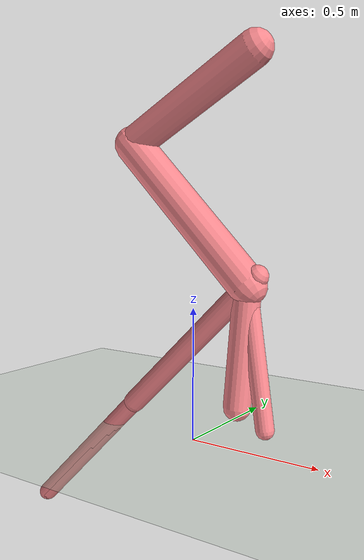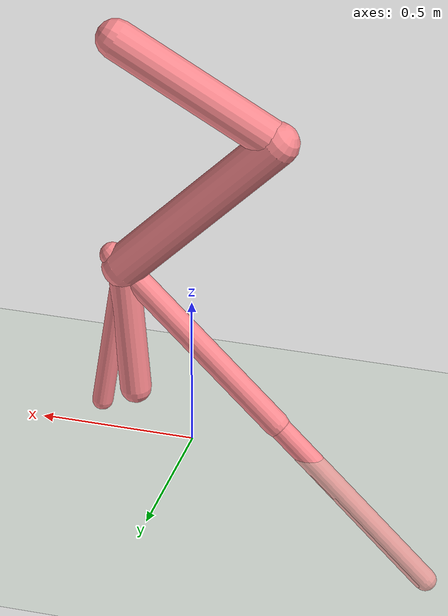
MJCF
<mujoco model="hopper">
  <compiler angle="degree" coordinate="global" inertiafromgeom="true"/>
  <default>
    <joint armature="1" damping="1" limited="true"/>
    <geom conaffinity="1" condim="1" contype="1" margin="0.001" rgba=".98 .54 .56 1." solimp=".8 .8 .01" solref=".02 1"/>
    <motor ctrllimited="true" ctrlrange="-.4 .4"/>
  </default>
  <option integrator="RK4" timestep="0.002"/>
  <visual>
    <headlight ambient=".1 .1 .1" diffuse=".6 .6 .6" specular="0.3 0.3 0.3"/>
    <map znear=".01"/>
    <quality shadowsize="16384"/>
  </visual>
  <worldbody>
    <light cutoff="100" diffuse="1 1 1" dir="-1 0 -1.3" directional="true" exponent="1" pos="1 0 1.3" specular=".1 .1 .1" castshadow="true"/>
    <geom conaffinity="1" condim="3" name="floor" pos="0 0 0" rgba="0.8 0.9 0.8 1" size="200 200 .125" type="plane" material="grid_new"/>
    <body name="0" pos="0 0 1.25">
      <camera name="track" mode="trackcom" pos="0 -3 1" xyaxes="1 0 0 0 0 1"/>
      <joint armature="0" axis="1 0 0" damping="0" limited="false" name="rootx" pos="0 0 0" stiffness="0" type="slide"/>
      <joint armature="0" axis="0 0 1" damping="0" limited="false" name="rootz" pos="0 0 0" ref="1.25" stiffness="0" type="slide"/>
      <joint armature="0" axis="0 1 0" damping="0" limited="false" name="0_joint" pos="0 0 1.25" stiffness="0" type="hinge"/>
      <geom friction="0.9" fromto="0.234288 0 1.380678 -0.274191 0 1.097065" size="0.064086" type="capsule"/>
      <body name="1" pos="-0.274191 0 1.097065">
        <joint axis="0 -1 0" name="1_joint" pos="-0.274191 0 1.097065" range="-360 360" type="hinge"/>
        <geom friction="2.0" fromto="-0.274193 0 1.097066 0.2219 0 0.597067" size="0.069652" type="capsule"/>
        <body name="11" pos="0.2219 0 0.597067">
          <joint axis="0 -1 0" name="11_joint" pos="0.2219 0 0.597067" range="-360 360" type="hinge"/>
          <geom friction="2.0" fromto="0.257153 0 0.632101 -0.278098 0 0.100175" size="0.041273" type="capsule"/>
          <body name="111" pos="-0.278098 0 0.100175">
            <joint axis="0 -1 0" name="111_joint" pos="-0.278098 0 0.100175" range="-360 360" type="hinge"/>
            <geom friction="2.0" fromto="-0.268655 0 0.109668 -0.775162 0 -0.399487" size="0.035974" type="capsule"/>
          </body>
          <body name="211" pos="-0.278098 0 0.100175">
            <joint axis="0 -1 0" name="211_joint" pos="-0.278098 0 0.100175" range="-360 360" type="hinge"/>
            <geom friction="2.0" fromto="-0.237699 0 0.141092 -0.769646 0 -0.39766" size="0.035456" type="capsule"/>
          </body>
        </body>
        <body name="21" pos="0.2219 0 0.597067">
          <joint axis="0 -1 0" name="21_joint" pos="0.2219 0 0.597067" range="-360 360" type="hinge"/>
          <geom friction="2.0" fromto="0.222074 0 0.599234 0.186816 0 0.161091" size="0.050294" type="capsule"/>
        </body>
        <body name="31" pos="0.2219 0 0.597067">
          <joint axis="0 -1 0" name="31_joint" pos="0.2219 0 0.597067" range="-360 360" type="hinge"/>
          <geom friction="2.0" fromto="0.221841 0 0.597446 0.298757 0 0.097194" size="0.033638" type="capsule"/>
        </body>
      </body>
    </body>
  </worldbody>
  <actuator>
    <motor ctrllimited="true" ctrlrange="-1.0 1.0" gear="257.359792" joint="1_joint" name="1_joint"/>
    <motor ctrllimited="true" ctrlrange="-1.0 1.0" gear="355.474116" joint="11_joint" name="11_joint"/>
    <motor ctrllimited="true" ctrlrange="-1.0 1.0" gear="350.25721" joint="21_joint" name="21_joint"/>
    <motor ctrllimited="true" ctrlrange="-1.0 1.0" gear="37.670562" joint="111_joint" name="111_joint"/>
    <motor ctrllimited="true" ctrlrange="-1.0 1.0" gear="399.605545" joint="31_joint" name="31_joint"/>
    <motor ctrllimited="true" ctrlrange="-1.0 1.0" gear="174.865511" joint="211_joint" name="211_joint"/>
  </actuator>
  <asset>
    <texture type="skybox" builtin="gradient" rgb1=".4 .5 .6" rgb2="0 0 0" width="100" height="100"/>
    <texture builtin="flat" height="1278" mark="cross" markrgb="1 1 1" name="texgeom" random="0.01" rgb1="0.8 0.6 0.4" rgb2="0.8 0.6 0.4" type="cube" width="127"/>
    <texture builtin="checker" height="100" name="texplane" rgb1="0 0 0" rgb2="0.8 0.8 0.8" type="2d" width="100"/>
    <material name="MatPlane" reflectance="0.5" shininess="1" specular="1" texrepeat="60 60" texture="texplane"/>
    <material name="geom" texture="texgeom" texuniform="true"/>
    <texture name="grid_new" type="2d" builtin="checker" rgb1=".1 .3 .2" rgb2=".2 .4 .3" width="1000" height="1000" mark="none" markrgb=".8 .6 .4"/>
    <material name="grid_new" texture="grid_new" texrepeat="0.2 0.2" texuniform="true" reflectance=".2"/>
  </asset>
</mujoco>
